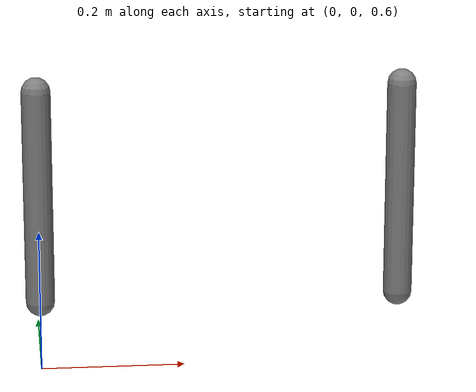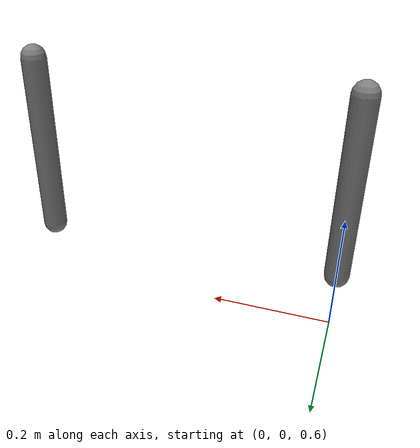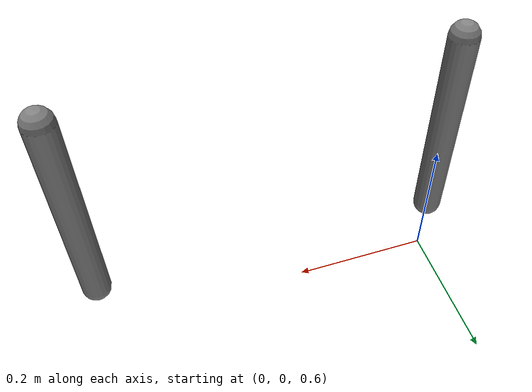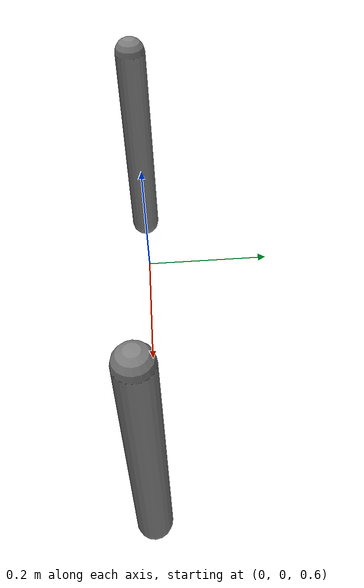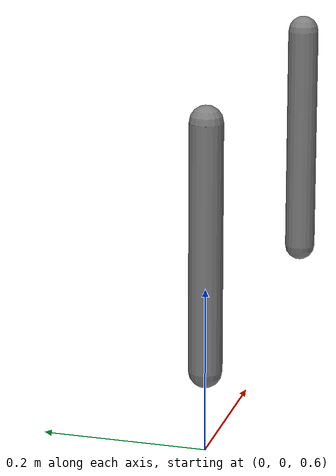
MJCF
<mujoco model="mixed-muscle">
  <compiler angle="radian"/>
  <option gravity="0 0 -9.81" timestep="0.001" integrator="RK4"/>

  <worldbody>
    <body name="arm_a" pos="0 0 1">
      <body name="forearm_a" pos="0 0 0">
        <joint name="elbow_a" type="hinge" axis="0 1 0"
               range="-1.57 1.57" limited="true"/>
        <inertial pos="0 0 -0.15" mass="1.0"
                  diaginertia="0.015 0.015 0.001"/>
        <geom type="capsule" size="0.02" fromto="0 0 0 0 0 -0.3"
              contype="0" conaffinity="0"/>
      </body>
    </body>
    <body name="arm_b" pos="0.5 0 1">
      <body name="forearm_b" pos="0 0 0">
        <joint name="elbow_b" type="hinge" axis="0 1 0"
               range="-1.57 1.57" limited="true"/>
        <inertial pos="0 0 -0.15" mass="1.0"
                  diaginertia="0.015 0.015 0.001"/>
        <geom type="capsule" size="0.02" fromto="0 0 0 0 0 -0.3"
              contype="0" conaffinity="0"/>
      </body>
    </body>
  </worldbody>

  <actuator>
    <muscle name="mj_bicep" joint="elbow_a" force="500"
            range="0.75 1.05" lmin="0.5" lmax="1.6"
            vmax="1.0" fpmax="0.3" fvmax="1.4"
            timeconst="0.01 0.04"/>
    <general name="hill_bicep" joint="elbow_b"
             dyntype="hillmuscle"
             gainprm="0.75 1.05 500 200 1.0 0.0 10.0 0.0 35.0"
             dynprm="0.01 0.04 0.0"/>
  </actuator>
</mujoco>
